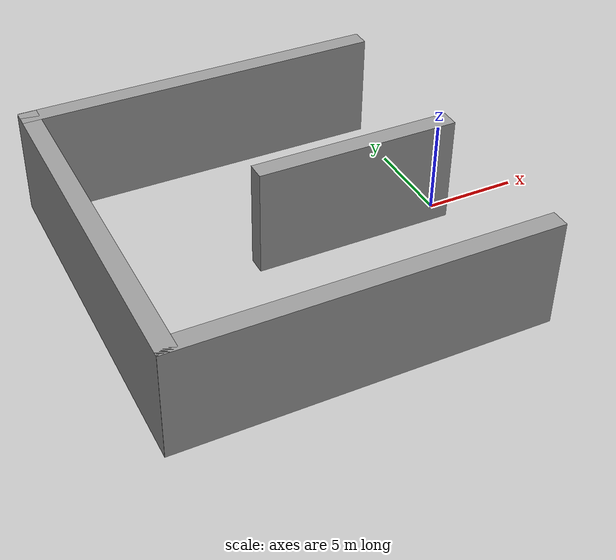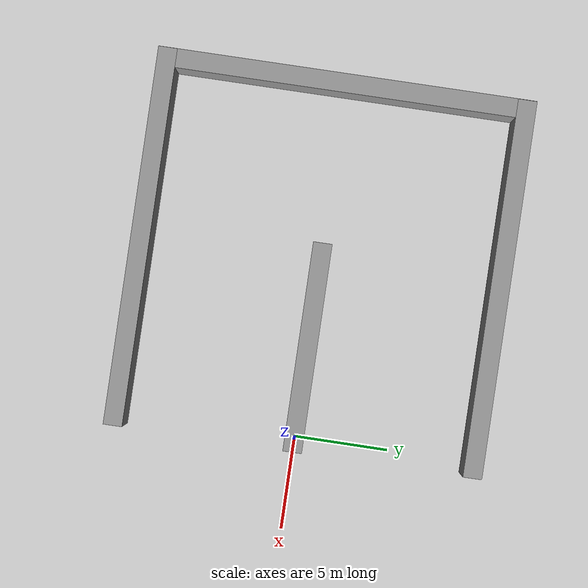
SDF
<?xml version='1.0'?>
<sdf version='1.7'>
  <model name='walls'>
    <link name='link'>
      <inertial>
        <mass>65.3916</mass>
        <inertia>
          <ixx>196.002</ixx>
          <ixy>0</ixy>
          <ixz>0</ixz>
          <iyy>856.92</iyy>
          <iyz>0</iyz>
          <izz>671.816</izz>
        </inertia>
        <pose>0 0 0 0 -0 0</pose>
      </inertial>
      <self_collide>0</self_collide>
      <enable_wind>0</enable_wind>
      <kinematic>0</kinematic>
      <pose>-4.87121 -0.001998 2.47087 0 -0 0</pose>
      <visual name='visual'>
        <geometry>
          <box>
            <size>11.0582 1 5.9134</size>
          </box>
        </geometry>
        <material>
          <script>
            <name>Gazebo/Grey</name>
            <uri>file://media/materials/scripts/gazebo.material</uri>
          </script>
          <shader type='pixel'/>
        </material>
        <pose>0 0 0 0 -0 0</pose>
        <transparency>0</transparency>
        <cast_shadows>1</cast_shadows>
      </visual>
      <collision name='collision'>
        <laser_retro>0</laser_retro>
        <max_contacts>10</max_contacts>
        <pose>0 0 0 0 -0 0</pose>
        <geometry>
          <box>
            <size>11.0582 1 5.9134</size>
          </box>
        </geometry>
        <surface>
          <friction>
            <ode>
              <mu>1</mu>
              <mu2>1</mu2>
              <fdir1>0 0 0</fdir1>
              <slip1>0</slip1>
              <slip2>0</slip2>
            </ode>
            <torsional>
              <coefficient>1</coefficient>
              <patch_radius>0</patch_radius>
              <surface_radius>0</surface_radius>
              <use_patch_radius>1</use_patch_radius>
              <ode>
                <slip>0</slip>
              </ode>
            </torsional>
          </friction>
          <bounce>
            <restitution_coefficient>0</restitution_coefficient>
            <threshold>1e+06</threshold>
          </bounce>
          <contact>
            <collide_without_contact>0</collide_without_contact>
            <collide_without_contact_bitmask>1</collide_without_contact_bitmask>
            <collide_bitmask>1</collide_bitmask>
            <ode>
              <soft_cfm>0</soft_cfm>
              <soft_erp>0.2</soft_erp>
              <kp>1e+13</kp>
              <kd>1</kd>
              <max_vel>0.01</max_vel>
              <min_depth>0</min_depth>
            </ode>
            <bullet>
              <split_impulse>1</split_impulse>
              <split_impulse_penetration_threshold>-0.01</split_impulse_penetration_threshold>
              <soft_cfm>0</soft_cfm>
              <soft_erp>0.2</soft_erp>
              <kp>1e+13</kp>
              <kd>1</kd>
            </bullet>
          </contact>
        </surface>
      </collision>
    </link>
    <link name='link_clone'>
      <inertial>
        <mass>118.139</mass>
        <inertia>
          <ixx>354.105</ixx>
          <ixy>0</ixy>
          <ixz>0</ixz>
          <iyy>4273.66</iyy>
          <iyz>0</iyz>
          <izz>3939.24</izz>
        </inertia>
        <pose>0 0 0 0 -0 0</pose>
      </inertial>
      <self_collide>0</self_collide>
      <enable_wind>0</enable_wind>
      <kinematic>0</kinematic>
      <pose>-9.34795 9.51458 2.47087 0 -0 0</pose>
      <visual name='visual'>
        <geometry>
          <box>
            <size>19.9782 1 5.9134</size>
          </box>
        </geometry>
        <material>
          <script>
            <name>Gazebo/Grey</name>
            <uri>file://media/materials/scripts/gazebo.material</uri>
          </script>
          <shader type='pixel'/>
        </material>
        <pose>0 0 0 0 -0 0</pose>
        <transparency>0</transparency>
        <cast_shadows>1</cast_shadows>
      </visual>
      <collision name='collision'>
        <laser_retro>0</laser_retro>
        <max_contacts>10</max_contacts>
        <pose>0 0 0 0 -0 0</pose>
        <geometry>
          <box>
            <size>19.9782 1 5.9134</size>
          </box>
        </geometry>
        <surface>
          <friction>
            <ode>
              <mu>1</mu>
              <mu2>1</mu2>
              <fdir1>0 0 0</fdir1>
              <slip1>0</slip1>
              <slip2>0</slip2>
            </ode>
            <torsional>
              <coefficient>1</coefficient>
              <patch_radius>0</patch_radius>
              <surface_radius>0</surface_radius>
              <use_patch_radius>1</use_patch_radius>
              <ode>
                <slip>0</slip>
              </ode>
            </torsional>
          </friction>
          <bounce>
            <restitution_coefficient>0</restitution_coefficient>
            <threshold>1e+06</threshold>
          </bounce>
          <contact>
            <collide_without_contact>0</collide_without_contact>
            <collide_without_contact_bitmask>1</collide_without_contact_bitmask>
            <collide_bitmask>1</collide_bitmask>
            <ode>
              <soft_cfm>0</soft_cfm>
              <soft_erp>0.2</soft_erp>
              <kp>1e+13</kp>
              <kd>1</kd>
              <max_vel>0.01</max_vel>
              <min_depth>0</min_depth>
            </ode>
            <bullet>
              <split_impulse>1</split_impulse>
              <split_impulse_penetration_threshold>-0.01</split_impulse_penetration_threshold>
              <soft_cfm>0</soft_cfm>
              <soft_erp>0.2</soft_erp>
              <kp>1e+13</kp>
              <kd>1</kd>
            </bullet>
          </contact>
        </surface>
      </collision>
    </link>
    <link name='link_clone_clone'>
      <inertial>
        <mass>118.139</mass>
        <inertia>
          <ixx>354.105</ixx>
          <ixy>0</ixy>
          <ixz>0</ixz>
          <iyy>4273.66</iyy>
          <iyz>0</iyz>
          <izz>3939.24</izz>
        </inertia>
        <pose>0 0 0 0 -0 0</pose>
      </inertial>
      <self_collide>0</self_collide>
      <enable_wind>0</enable_wind>
      <kinematic>0</kinematic>
      <pose>-9.35516 -9.49607 2.47087 0 -0 0</pose>
      <visual name='visual'>
        <geometry>
          <box>
            <size>19.9782 1 5.9134</size>
          </box>
        </geometry>
        <material>
          <script>
            <name>Gazebo/Grey</name>
            <uri>file://media/materials/scripts/gazebo.material</uri>
          </script>
          <shader type='pixel'/>
        </material>
        <pose>0 0 0 0 -0 0</pose>
        <transparency>0</transparency>
        <cast_shadows>1</cast_shadows>
      </visual>
      <collision name='collision'>
        <laser_retro>0</laser_retro>
        <max_contacts>10</max_contacts>
        <pose>0 0 0 0 -0 0</pose>
        <geometry>
          <box>
            <size>19.9782 1 5.9134</size>
          </box>
        </geometry>
        <surface>
          <friction>
            <ode>
              <mu>1</mu>
              <mu2>1</mu2>
              <fdir1>0 0 0</fdir1>
              <slip1>0</slip1>
              <slip2>0</slip2>
            </ode>
            <torsional>
              <coefficient>1</coefficient>
              <patch_radius>0</patch_radius>
              <surface_radius>0</surface_radius>
              <use_patch_radius>1</use_patch_radius>
              <ode>
                <slip>0</slip>
              </ode>
            </torsional>
          </friction>
          <bounce>
            <restitution_coefficient>0</restitution_coefficient>
            <threshold>1e+06</threshold>
          </bounce>
          <contact>
            <collide_without_contact>0</collide_without_contact>
            <collide_without_contact_bitmask>1</collide_without_contact_bitmask>
            <collide_bitmask>1</collide_bitmask>
            <ode>
              <soft_cfm>0</soft_cfm>
              <soft_erp>0.2</soft_erp>
              <kp>1e+13</kp>
              <kd>1</kd>
              <max_vel>0.01</max_vel>
              <min_depth>0</min_depth>
            </ode>
            <bullet>
              <split_impulse>1</split_impulse>
              <split_impulse_penetration_threshold>-0.01</split_impulse_penetration_threshold>
              <soft_cfm>0</soft_cfm>
              <soft_erp>0.2</soft_erp>
              <kp>1e+13</kp>
              <kd>1</kd>
            </bullet>
          </contact>
        </surface>
      </collision>
    </link>
    <link name='link_clone_clone_0'>
      <inertial>
        <mass>118.139</mass>
        <inertia>
          <ixx>354.105</ixx>
          <ixy>0</ixy>
          <ixz>0</ixz>
          <iyy>4273.66</iyy>
          <iyz>0</iyz>
          <izz>3939.24</izz>
        </inertia>
        <pose>0 0 0 0 -0 0</pose>
      </inertial>
      <self_collide>0</self_collide>
      <enable_wind>0</enable_wind>
      <kinematic>0</kinematic>
      <pose>-18.8487 0.004999 2.47087 0 0 -1.5708</pose>
      <visual name='visual'>
        <geometry>
          <box>
            <size>19.9782 1 5.9134</size>
          </box>
        </geometry>
        <material>
          <script>
            <name>Gazebo/Grey</name>
            <uri>file://media/materials/scripts/gazebo.material</uri>
          </script>
          <shader type='pixel'/>
        </material>
        <pose>0 0 0 0 -0 0</pose>
        <transparency>0</transparency>
        <cast_shadows>1</cast_shadows>
      </visual>
      <collision name='collision'>
        <laser_retro>0</laser_retro>
        <max_contacts>10</max_contacts>
        <pose>0 0 0 0 -0 0</pose>
        <geometry>
          <box>
            <size>19.9782 1 5.9134</size>
          </box>
        </geometry>
        <surface>
          <friction>
            <ode>
              <mu>1</mu>
              <mu2>1</mu2>
              <fdir1>0 0 0</fdir1>
              <slip1>0</slip1>
              <slip2>0</slip2>
            </ode>
            <torsional>
              <coefficient>1</coefficient>
              <patch_radius>0</patch_radius>
              <surface_radius>0</surface_radius>
              <use_patch_radius>1</use_patch_radius>
              <ode>
                <slip>0</slip>
              </ode>
            </torsional>
          </friction>
          <bounce>
            <restitution_coefficient>0</restitution_coefficient>
            <threshold>1e+06</threshold>
          </bounce>
          <contact>
            <collide_without_contact>0</collide_without_contact>
            <collide_without_contact_bitmask>1</collide_without_contact_bitmask>
            <collide_bitmask>1</collide_bitmask>
            <ode>
              <soft_cfm>0</soft_cfm>
              <soft_erp>0.2</soft_erp>
              <kp>1e+13</kp>
              <kd>1</kd>
              <max_vel>0.01</max_vel>
              <min_depth>0</min_depth>
            </ode>
            <bullet>
              <split_impulse>1</split_impulse>
              <split_impulse_penetration_threshold>-0.01</split_impulse_penetration_threshold>
              <soft_cfm>0</soft_cfm>
              <soft_erp>0.2</soft_erp>
              <kp>1e+13</kp>
              <kd>1</kd>
            </bullet>
          </contact>
        </surface>
      </collision>
    </link>
    <static>0</static>
    <allow_auto_disable>1</allow_auto_disable>
  </model>
</sdf>
